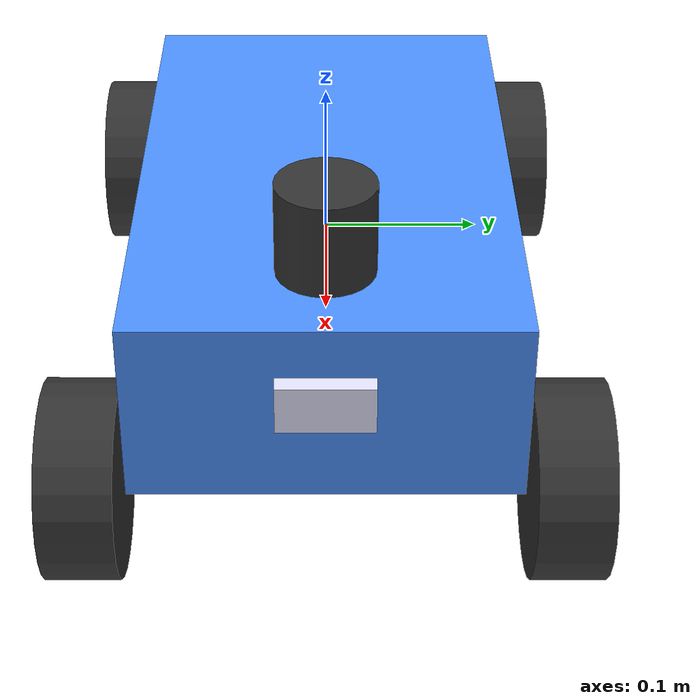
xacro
<?xml version="1.0"?>

<!-- A simple model of the racecar for rviz -->

<robot xmlns:xacro="http://www.ros.org/wiki/xacro" name="racecar">

  <xacro:property name="wheelbase" value="0.3302" />
  <xacro:property name="width" value="0.2032" />
  <xacro:property name="height" value="0.1" />
  <xacro:property name="ground_offset" value="0.04" />
  <xacro:property name="wheel_radius" value="0.0508" />
  <xacro:property name="wheel_length" value="0.0381" />
  <xacro:property name="laser_distance_from_base_link" value="0.275" />
  <xacro:property name="camera_distance_from_base_link" value="0.335" />
  <xacro:property name="laser_height" value="0.05" />
  <xacro:property name="laser_radius" value="0.026" />
  <xacro:property name="camera_height" value="0.05" />
  <xacro:property name="camera_width" value="0.026" />
  <xacro:property name="car_name" value="ego_racecar" />

  <material name="black">
    <color rgba="0.2 0.2 0.2 1."/>
  </material>

  <material name="blue">
    <color rgba="0.3 0.57 1. 1."/>
  </material>

  <material name="white">
    <color rgba="0.9 0.9 1. 1."/>
  </material>

  <link name="${car_name}/base_link">
    <visual>
      <origin xyz="${wheelbase/2} 0 ${ground_offset+height/2}"/>
      <geometry>
        <box size="${wheelbase} ${width} ${height}"/>
      </geometry>
      <material name="blue"/>
    </visual>
  </link>

  <joint name="base_to_laser_model" type="fixed">
    <parent link="${car_name}/base_link"/>
    <child link="${car_name}/laser_model"/>
    <origin xyz="${laser_distance_from_base_link} 0 ${ground_offset+height+(laser_height/2)}"/>
  </joint>

  <link name="${car_name}/laser_model">
    <visual>
      <geometry>
        <cylinder radius="${laser_radius}" length="${laser_height}"/>
      </geometry>
      <material name="black"/>
    </visual>
  </link>

  <link name="${car_name}/imu_link"></link>

  <joint name="base_to_imu" type="fixed">
    <origin xyz="0 0 0" rpy="0 0 0"/>
    <parent link="${car_name}/base_link"/>
    <child link="${car_name}/imu_link"/>
  </joint>

  <joint name="base_to_camera" type="fixed">
    <parent link="${car_name}/base_link"/>
    <child link="${car_name}/camera_link"/>
    <origin xyz="${camera_distance_from_base_link} 0 ${height}" rpy="0 1.57075 0"/>
  </joint>

  <link name="${car_name}/camera_link">
    <visual>
      <geometry>
        <box size="${camera_width} ${camera_height} 0.01"/>
      </geometry>
      <material name="white"/>
    </visual>
  </link>

  <joint name="$base_to_back_left_wheel" type="fixed">
    <parent link="${car_name}/base_link"/>
    <child link="${car_name}/back_left_wheel"/>
    <origin xyz="0 ${(wheel_length+width)/2} ${wheel_radius}"/>
  </joint>

  <link name="${car_name}/back_left_wheel">
    <visual>
      <geometry>
        <cylinder radius="${wheel_radius}" length="${wheel_length}"/>
      </geometry>
      <material name="black"/>
      <origin rpy="${pi/2} 0 0"/>
    </visual>
  </link>

  <joint name="base_to_back_right_wheel" type="fixed">
    <parent link="${car_name}/base_link"/>
    <child link="${car_name}/back_right_wheel"/>
    <origin xyz="0 ${-(wheel_length+width)/2} ${wheel_radius}"/>
  </joint>

  <link name="${car_name}/back_right_wheel">
    <visual>
      <geometry>
        <cylinder radius="${wheel_radius}" length="${wheel_length}"/>
      </geometry>
      <material name="black"/>
      <origin rpy="${pi/2} 0 0"/>
    </visual>
  </link>

  <joint name="base_to_front_left_hinge" type="fixed">
    <parent link="${car_name}/base_link"/>
    <child link="${car_name}/front_left_hinge"/>
    <origin xyz="${wheelbase} ${(wheel_length+width)/2} ${wheel_radius}"/>
  </joint>

  <link name="${car_name}/front_left_hinge"/>

  <joint name="front_left_hinge_to_wheel" type="continuous">
    <parent link="${car_name}/front_left_hinge"/>
    <child link="${car_name}/front_left_wheel"/>
  </joint>

  <link name="${car_name}/front_left_wheel">
    <visual>
      <geometry>
        <cylinder radius="${wheel_radius}" length="${wheel_length}"/>
      </geometry>
      <material name="black"/>
      <origin rpy="${pi/2} 0 0"/>
    </visual>
  </link>

  <joint name="base_to_front_right_hinge" type="fixed">
    <parent link="${car_name}/base_link"/>
    <child link="${car_name}/front_right_hinge"/>
    <origin xyz="${wheelbase} ${-(wheel_length+width)/2} ${wheel_radius}"/>
  </joint>

  <link name="${car_name}/front_right_hinge"/>

  <joint name="front_right_hinge_to_wheel" type="continuous">
    <parent link="${car_name}/front_right_hinge"/>
    <child link="${car_name}/front_right_wheel"/>
  </joint>

  <link name="${car_name}/front_right_wheel">
    <visual>
      <geometry>
        <cylinder radius="${wheel_radius}" length="${wheel_length}"/>
      </geometry>
      <material name="black"/>
      <origin rpy="${pi/2} 0 0"/>
    </visual>
  </link>

</robot>
